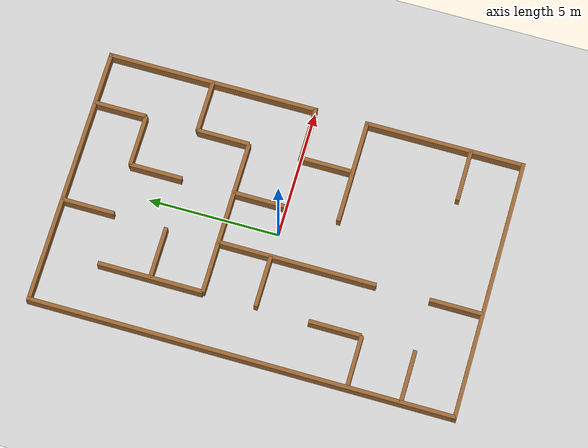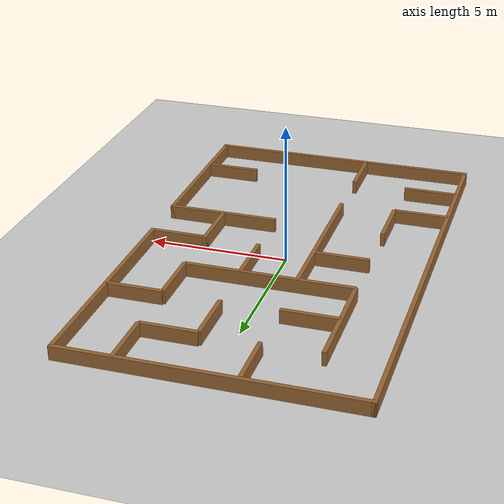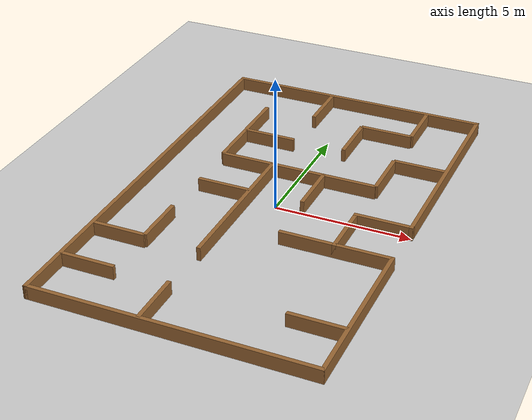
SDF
<?xml version="1.0"?>
<sdf version="1.6">
  <world name="empty">
    <physics name="1ms" type="ignored">
      <max_step_size>0.001</max_step_size>
      <real_time_factor>1.0</real_time_factor>
    </physics>

    <plugin
      filename="ignition-gazebo-physics-system"
      name="gz::sim::systems::Physics">
    </plugin>
    <plugin
      filename="ignition-gazebo-user-commands-system"
      name="gz::sim::systems::UserCommands">
    </plugin>
    <plugin
      filename="ignition-gazebo-scene-broadcaster-system"
      name="gz::sim::systems::SceneBroadcaster">
    </plugin>
    <plugin
      filename="ignition-gazebo-contact-system"
      name="gz::sim::systems::Contact">
    </plugin>
    <plugin
      filename="ignition-gazebo-sensors-system"
      name="gz::sim::systems::Sensors">
    </plugin>

    <light type="directional" name="sun">
      <cast_shadows>true</cast_shadows>
      <pose>0 0 10 0 0 0</pose>
      <diffuse>0.8 0.8 0.8 1</diffuse>
      <specular>0.2 0.2 0.2 1</specular>
      <attenuation>
        <range>1000</range>
        <constant>0.9</constant>
        <linear>0.01</linear>
        <quadratic>0.001</quadratic>
      </attenuation>
      <direction>-0.5 0.1 -0.9</direction>
    </light>

    <model name="ground_plane">
      <static>true</static>
      <link name="link">
        <collision name="collision">
          <geometry>
            <plane>
              <normal>0 0 1</normal>
              <size>100 100</size>
            </plane>
          </geometry>
        </collision>
        <visual name="visual">
          <geometry>
            <plane>
              <normal>0 0 1</normal>
              <size>100 100</size>
            </plane>
          </geometry>
          <material>
            <ambient>0.8 0.8 0.8 1</ambient>
            <diffuse>0.8 0.8 0.8 1</diffuse>
            <specular>0.8 0.8 0.8 1</specular>
          </material>
        </visual>
      </link>
    </model>

    <!-- Include the simple_room maze model -->
    <include>
      <uri>model://simple_room</uri>
      <pose>0 0 0 0 0 0</pose>
    </include>

  </world>
</sdf>

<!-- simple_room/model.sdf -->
<sdf version="1.6">
  <model name="simple_room">
    <static>true</static>
    <pose>0 0 0 0 0 0</pose>

    <link name="wall_north">
      <pose>0 8 0.25 0 0 0</pose>
      <collision name="col"><geometry><box><size>10.15 0.15 0.5</size></box></geometry></collision>
      <visual name="vis"><geometry><box><size>10.15 0.15 0.5</size></box></geometry><material><ambient>0.6 0.4 0.2 1</ambient><diffuse>0.6 0.4 0.2 1</diffuse></material></visual>
    </link>

    <link name="wall_south">
      <pose>0 -8 0.25 0 0 0</pose>
      <collision name="col"><geometry><box><size>10.15 0.15 0.5</size></box></geometry></collision>
      <visual name="vis"><geometry><box><size>10.15 0.15 0.5</size></box></geometry><material><ambient>0.6 0.4 0.2 1</ambient><diffuse>0.6 0.4 0.2 1</diffuse></material></visual>
    </link>

    <link name="wall_west">
      <pose>-5 0 0.25 0 0 0</pose>
      <collision name="col"><geometry><box><size>0.15 16.15 0.5</size></box></geometry></collision>
      <visual name="vis"><geometry><box><size>0.15 16.15 0.5</size></box></geometry><material><ambient>0.6 0.4 0.2 1</ambient><diffuse>0.6 0.4 0.2 1</diffuse></material></visual>
    </link>

    <link name="wall_east_top">
      <pose>5 4 0.25 0 0 0</pose>
      <collision name="col"><geometry><box><size>0.15 8.15 0.5</size></box></geometry></collision>
      <visual name="vis"><geometry><box><size>0.15 8.15 0.5</size></box></geometry><material><ambient>0.6 0.4 0.2 1</ambient><diffuse>0.6 0.4 0.2 1</diffuse></material></visual>
    </link>
    <link name="wall_east_indent_top">
      <pose>4 0 0.25 0 0 0</pose>
      <collision name="col"><geometry><box><size>2.15 0.15 0.5</size></box></geometry></collision>
      <visual name="vis"><geometry><box><size>2.15 0.15 0.5</size></box></geometry><material><ambient>0.6 0.4 0.2 1</ambient><diffuse>0.6 0.4 0.2 1</diffuse></material></visual>
    </link>
    <link name="wall_east_indent_back">
      <pose>3 -1 0.25 0 0 0</pose>
      <collision name="col"><geometry><box><size>0.15 2.15 0.5</size></box></geometry></collision>
      <visual name="vis"><geometry><box><size>0.15 2.15 0.5</size></box></geometry><material><ambient>0.6 0.4 0.2 1</ambient><diffuse>0.6 0.4 0.2 1</diffuse></material></visual>
    </link>
    <link name="wall_east_bottom">
      <pose>5 -5 0.25 0 0 0</pose>
      <collision name="col"><geometry><box><size>0.15 6.15 0.5</size></box></geometry></collision>
      <visual name="vis"><geometry><box><size>0.15 6.15 0.5</size></box></geometry><material><ambient>0.6 0.4 0.2 1</ambient><diffuse>0.6 0.4 0.2 1</diffuse></material></visual>
    </link>

    <link name="inner_v1">
      <pose>-3 4 0.25 0 0 0</pose>
      <collision name="col"><geometry><box><size>0.15 4 0.5</size></box></geometry></collision>
      <visual name="vis"><geometry><box><size>0.15 4 0.5</size></box></geometry><material><ambient>0.6 0.4 0.2 1</ambient><diffuse>0.6 0.4 0.2 1</diffuse></material></visual>
    </link>
    <link name="inner_v2">
      <pose>-3 -3 0.25 0 0 0</pose>
      <collision name="col"><geometry><box><size>0.15 2 0.5</size></box></geometry></collision>
      <visual name="vis"><geometry><box><size>0.15 2 0.5</size></box></geometry><material><ambient>0.6 0.4 0.2 1</ambient><diffuse>0.6 0.4 0.2 1</diffuse></material></visual>
    </link>
    <link name="inner_v3">
      <pose>-1 7 0.25 0 0 0</pose>
      <collision name="col"><geometry><box><size>0.15 2 0.5</size></box></geometry></collision>
      <visual name="vis"><geometry><box><size>0.15 2 0.5</size></box></geometry><material><ambient>0.6 0.4 0.2 1</ambient><diffuse>0.6 0.4 0.2 1</diffuse></material></visual>
    </link>
    <link name="inner_v4">
      <pose>-1 -1 0.25 0 0 0</pose>
      <collision name="col"><geometry><box><size>0.15 6 0.5</size></box></geometry></collision>
      <visual name="vis"><geometry><box><size>0.15 6 0.5</size></box></geometry><material><ambient>0.6 0.4 0.2 1</ambient><diffuse>0.6 0.4 0.2 1</diffuse></material></visual>
    </link>
    <link name="inner_v5">
      <pose>1 5 0.25 0 0 0</pose>
      <collision name="col"><geometry><box><size>0.15 2 0.5</size></box></geometry></collision>
      <visual name="vis"><geometry><box><size>0.15 2 0.5</size></box></geometry><material><ambient>0.6 0.4 0.2 1</ambient><diffuse>0.6 0.4 0.2 1</diffuse></material></visual>
    </link>
    <link name="inner_v6">
      <pose>1 1 0.25 0 0 0</pose>
      <collision name="col"><geometry><box><size>0.15 2 0.5</size></box></geometry></collision>
      <visual name="vis"><geometry><box><size>0.15 2 0.5</size></box></geometry><material><ambient>0.6 0.4 0.2 1</ambient><diffuse>0.6 0.4 0.2 1</diffuse></material></visual>
    </link>
    <link name="inner_v8">
      <pose>3 7 0.25 0 0 0</pose>
      <collision name="col"><geometry><box><size>0.15 2 0.5</size></box></geometry></collision>
      <visual name="vis"><geometry><box><size>0.15 2 0.5</size></box></geometry><material><ambient>0.6 0.4 0.2 1</ambient><diffuse>0.6 0.4 0.2 1</diffuse></material></visual>
    </link>
    <link name="inner_v9">
      <pose>3 3 0.25 0 0 0</pose>
      <collision name="col"><geometry><box><size>0.15 2 0.5</size></box></geometry></collision>
      <visual name="vis"><geometry><box><size>0.15 2 0.5</size></box></geometry><material><ambient>0.6 0.4 0.2 1</ambient><diffuse>0.6 0.4 0.2 1</diffuse></material></visual>
    </link>
    <link name="inner_v10">
      <pose>-1 -7 0.25 0 0 0</pose>
      <collision name="col"><geometry><box><size>0.15 2 0.5</size></box></geometry></collision>
      <visual name="vis"><geometry><box><size>0.15 2 0.5</size></box></geometry><material><ambient>0.6 0.4 0.2 1</ambient><diffuse>0.6 0.4 0.2 1</diffuse></material></visual>
    </link>

    <link name="inner_h1">
      <pose>2 6 0.25 0 0 0</pose>
      <collision name="col"><geometry><box><size>2 0.15 0.5</size></box></geometry></collision>
      <visual name="vis"><geometry><box><size>2 0.15 0.5</size></box></geometry><material><ambient>0.6 0.4 0.2 1</ambient><diffuse>0.6 0.4 0.2 1</diffuse></material></visual>
    </link>
    <link name="inner_h2">
      <pose>-2 4 0.25 0 0 0</pose>
      <collision name="col"><geometry><box><size>2 0.15 0.5</size></box></geometry></collision>
      <visual name="vis"><geometry><box><size>2 0.15 0.5</size></box></geometry><material><ambient>0.6 0.4 0.2 1</ambient><diffuse>0.6 0.4 0.2 1</diffuse></material></visual>
    </link>
    <link name="inner_h3">
      <pose>4 4 0.25 0 0 0</pose>
      <collision name="col"><geometry><box><size>2 0.15 0.5</size></box></geometry></collision>
      <visual name="vis"><geometry><box><size>2 0.15 0.5</size></box></geometry><material><ambient>0.6 0.4 0.2 1</ambient><diffuse>0.6 0.4 0.2 1</diffuse></material></visual>
    </link>
    <link name="inner_h4">
      <pose>0 2 0.25 0 0 0</pose>
      <collision name="col"><geometry><box><size>6 0.15 0.5</size></box></geometry></collision>
      <visual name="vis"><geometry><box><size>6 0.15 0.5</size></box></geometry><material><ambient>0.6 0.4 0.2 1</ambient><diffuse>0.6 0.4 0.2 1</diffuse></material></visual>
    </link>
    <link name="inner_h5">
      <pose>-2 0 0.25 0 0 0</pose>
      <collision name="col"><geometry><box><size>2 0.15 0.5</size></box></geometry></collision>
      <visual name="vis"><geometry><box><size>2 0.15 0.5</size></box></geometry><material><ambient>0.6 0.4 0.2 1</ambient><diffuse>0.6 0.4 0.2 1</diffuse></material></visual>
    </link>
    <link name="inner_h6">
      <pose>3 -2 0.25 0 0 0</pose>
      <collision name="col"><geometry><box><size>4 0.15 0.5</size></box></geometry></collision>
      <visual name="vis"><geometry><box><size>4 0.15 0.5</size></box></geometry><material><ambient>0.6 0.4 0.2 1</ambient><diffuse>0.6 0.4 0.2 1</diffuse></material></visual>
    </link>
    <link name="inner_h7">
      <pose>-4 -4 0.25 0 0 0</pose>
      <collision name="col"><geometry><box><size>2 0.15 0.5</size></box></geometry></collision>
      <visual name="vis"><geometry><box><size>2 0.15 0.5</size></box></geometry><material><ambient>0.6 0.4 0.2 1</ambient><diffuse>0.6 0.4 0.2 1</diffuse></material></visual>
    </link>
    <link name="inner_h8">
      <pose>-4 -6 0.25 0 0 0</pose>
      <collision name="col"><geometry><box><size>2 0.15 0.5</size></box></geometry></collision>
      <visual name="vis"><geometry><box><size>2 0.15 0.5</size></box></geometry><material><ambient>0.6 0.4 0.2 1</ambient><diffuse>0.6 0.4 0.2 1</diffuse></material></visual>
    </link>
    <link name="inner_h9">
      <pose>4 -6 0.25 0 0 0</pose>
      <collision name="col"><geometry><box><size>2 0.15 0.5</size></box></geometry></collision>
      <visual name="vis"><geometry><box><size>2 0.15 0.5</size></box></geometry><material><ambient>0.6 0.4 0.2 1</ambient><diffuse>0.6 0.4 0.2 1</diffuse></material></visual>
    </link>

  </model>
</sdf>
